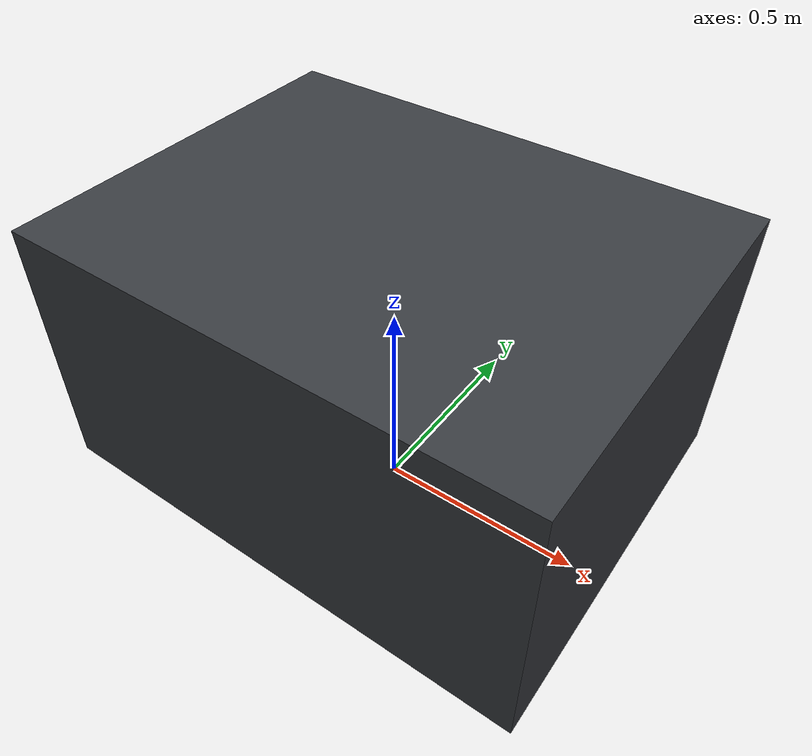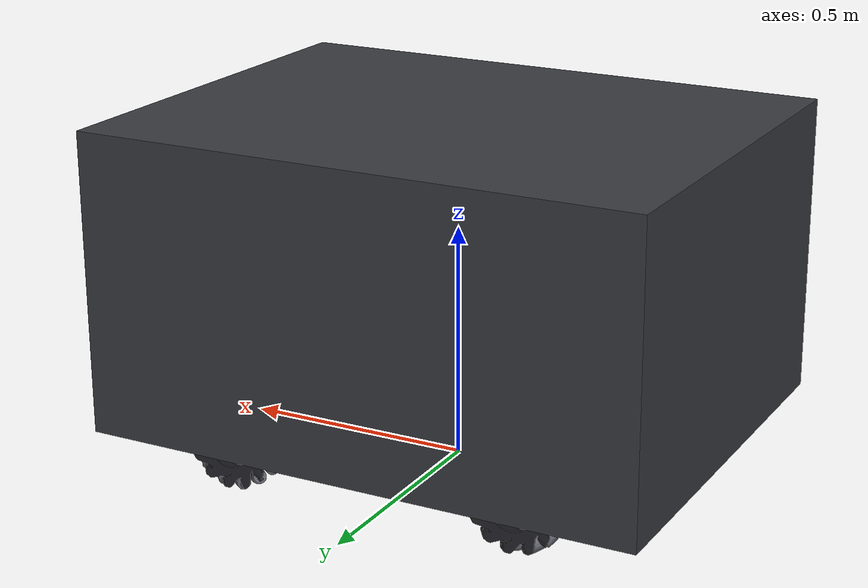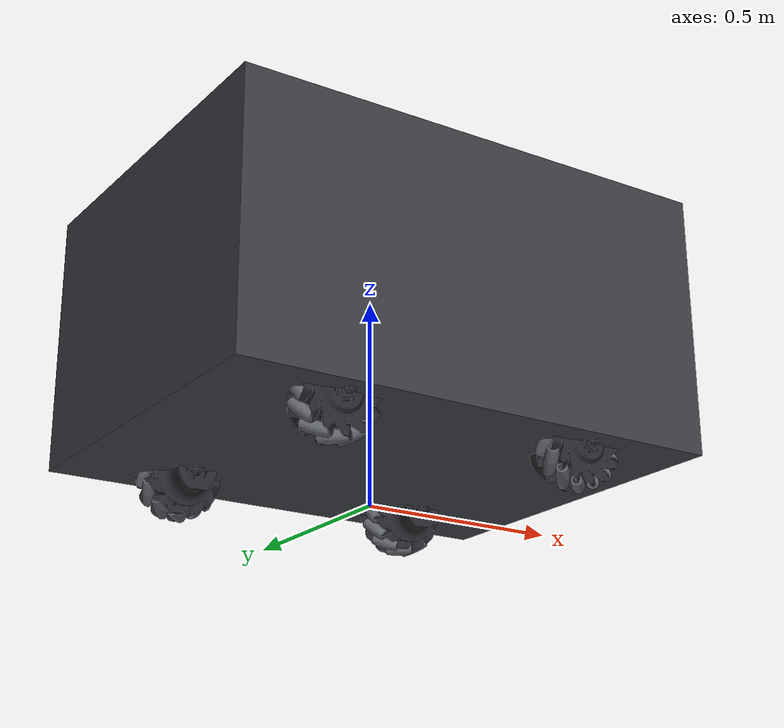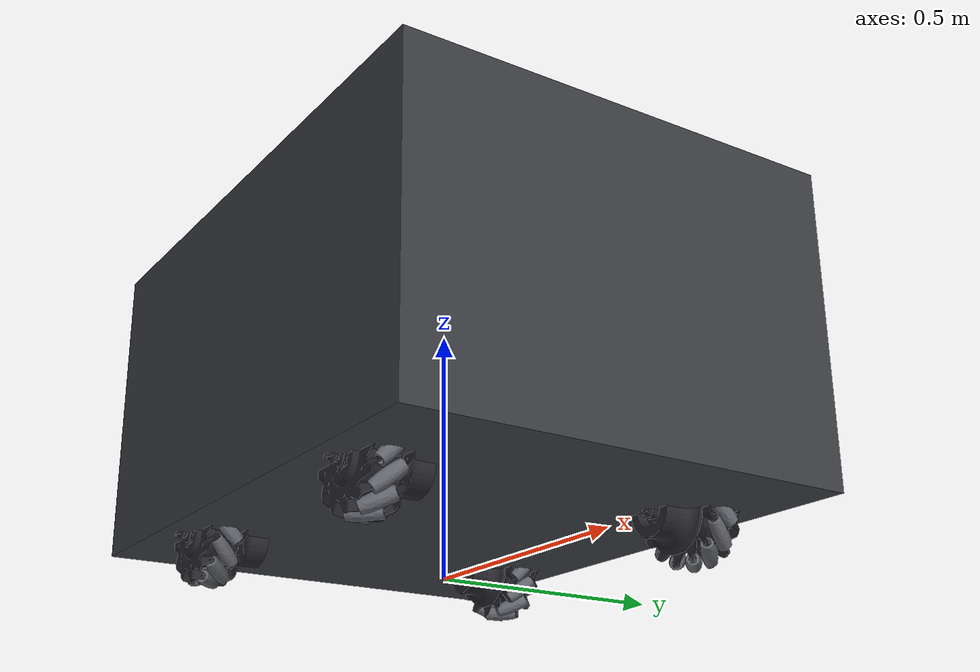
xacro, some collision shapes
<?xml version="1.0"?>
<robot xmlns:xacro="http://www.ros.org/wiki/xacro" name="agro_robot">

  <material name="chassis"><color rgba="0.22 0.23 0.25 1"/></material>
  <material name="hub"><color rgba="0.15 0.15 0.17 1"/></material>
  <material name="roller"><color rgba="0.38 0.39 0.42 1"/></material>

  <link name="base_footprint"/>
  <joint name="base_joint" type="fixed">
    <parent link="base_footprint"/><child link="base_link"/>
    <origin xyz="0 0 0.1014"/>
  </joint>

  <link name="base_link">
    <inertial>
      <origin xyz="0 0 0.22"/>
      <mass value="100.000"/>
      <inertia ixx="11.0" iyy="16.6" izz="18.5" ixy="0" ixz="0" iyz="0"/>
    </inertial>
    <visual>
      <origin xyz="0 0 -0.1035" rpy="0 0 -1.570796"/>
      <geometry><mesh filename="package://maze_nav/meshes/chassis.stl"
              scale="0.001 0.001 0.001"/></geometry>
      <material name="chassis"/>
    </visual>
    <!-- Коллизия примитивом: меш в 680 тыс. граней убил бы физику -->
    <collision>
      <origin xyz="0 0 0.319"/>
      <geometry><box size="1.2016 0.9228 0.6375"/></geometry>
    </collision>
  </link>

  <!-- колесо fl: CAD плоскость X=-355.4, ось Y=317.8, кольцо роликов R=86.0 мм -->
  <link name="fl_wheel">
    <inertial>
      <mass value="4.520"/>
      <inertia ixx="0.013210" iyy="0.023237" izz="0.013210" ixy="0" ixz="0" iyz="0"/>
    </inertial>
    <visual><geometry><mesh
      filename="package://maze_nav/meshes/wheel_hub_l.stl"
      scale="0.001 0.001 0.001"/></geometry>
      <material name="hub"/></visual>
    <!-- Коллизия рельсового ролика: набор цилиндров по измеренному
         профилю (см. RAIL_PROFILE). Канавка вогнутая, одним телом
         её не посчитать — движки берут только выпуклые формы. -->
    <collision><!-- R=50.0 мм -->
      <origin xyz="0 -0.0849 0" rpy="1.570796 0 0"/>
      <geometry><cylinder radius="0.05" length="0.0399"/></geometry>
    </collision>
    <collision><!-- R=52.0 мм -->
      <origin xyz="0 -0.0625 0" rpy="1.570796 0 0"/>
      <geometry><cylinder radius="0.052" length="0.0050"/></geometry>
    </collision>
    <collision><!-- R=55.0 мм -->
      <origin xyz="0 -0.0580 0" rpy="1.570796 0 0"/>
      <geometry><cylinder radius="0.055" length="0.0040"/></geometry>
    </collision>
    <collision><!-- R=58.0 мм -->
      <origin xyz="0 -0.0545 0" rpy="1.570796 0 0"/>
      <geometry><cylinder radius="0.058" length="0.0030"/></geometry>
    </collision>
    <collision><!-- R=62.0 мм -->
      <origin xyz="0 -0.0515 0" rpy="1.570796 0 0"/>
      <geometry><cylinder radius="0.062" length="0.0030"/></geometry>
    </collision>
    <collision><!-- R=68.0 мм -->
      <origin xyz="0 -0.0485 0" rpy="1.570796 0 0"/>
      <geometry><cylinder radius="0.068" length="0.0030"/></geometry>
    </collision>
    <collision><!-- R=75.0 мм -->
      <origin xyz="0 -0.0435 0" rpy="1.570796 0 0"/>
      <geometry><cylinder radius="0.075" length="0.0071"/></geometry>
    </collision>
  </link>
  <joint name="fl_wheel_joint" type="continuous">
    <parent link="base_link"/><child link="fl_wheel"/>
    <origin xyz="0.3178 0.3554 0"/>
    <axis xyz="0 1 0"/>
    <dynamics damping="0.05" friction="0.0"/>
  </joint>
  <link name="fl_roller_0">
    <inertial>
      <mass value="0.04"/>
      <inertia ixx="0.00001647" iyy="0.00001647" izz="0.00000477" ixy="0" ixz="0" iyz="0"/>
    </inertial>
    <visual><geometry><mesh filename="package://maze_nav/meshes/mec_roller.stl" scale="0.001 0.001 0.001"/></geometry><material name="roller"/></visual>
    <collision><geometry><mesh filename="package://maze_nav/meshes/mec_roller.stl" scale="0.001 0.001 0.001"/></geometry></collision>
  </link>
  <joint name="fl_roller_0_joint" type="continuous">
    <parent link="fl_wheel"/><child link="fl_roller_0"/>
    <origin xyz="-0.00004 0.00000 0.08600" rpy="-0.785403 1.570796 0.000000"/>
    <axis xyz="0 0 1"/>
    <dynamics damping="0.0001" friction="0.0"/>
  </joint>
  <link name="fl_roller_1">
    <inertial>
      <mass value="0.04"/>
      <inertia ixx="0.00001647" iyy="0.00001647" izz="0.00000477" ixy="0" ixz="0" iyz="0"/>
    </inertial>
    <visual><geometry><mesh filename="package://maze_nav/meshes/mec_roller.stl" scale="0.001 0.001 0.001"/></geometry><material name="roller"/></visual>
    <collision><geometry><mesh filename="package://maze_nav/meshes/mec_roller.stl" scale="0.001 0.001 0.001"/></geometry></collision>
  </link>
  <joint name="fl_roller_1_joint" type="continuous">
    <parent link="fl_wheel"/><child link="fl_roller_1"/>
    <origin xyz="-0.04303 -0.00000 0.07446" rpy="-0.785403 1.047200 0.000000"/>
    <axis xyz="0 0 1"/>
    <dynamics damping="0.0001" friction="0.0"/>
  </joint>
  <link name="fl_roller_2">
    <inertial>
      <mass value="0.04"/>
      <inertia ixx="0.00001647" iyy="0.00001647" izz="0.00000477" ixy="0" ixz="0" iyz="0"/>
    </inertial>
    <visual><geometry><mesh filename="package://maze_nav/meshes/mec_roller.stl" scale="0.001 0.001 0.001"/></geometry><material name="roller"/></visual>
    <collision><geometry><mesh filename="package://maze_nav/meshes/mec_roller.stl" scale="0.001 0.001 0.001"/></geometry></collision>
  </link>
  <joint name="fl_roller_2_joint" type="continuous">
    <parent link="fl_wheel"/><child link="fl_roller_2"/>
    <origin xyz="-0.07450 -0.00000 0.04297" rpy="-0.785403 0.523596 0.000000"/>
    <axis xyz="0 0 1"/>
    <dynamics damping="0.0001" friction="0.0"/>
  </joint>
  <link name="fl_roller_3">
    <inertial>
      <mass value="0.04"/>
      <inertia ixx="0.00001647" iyy="0.00001647" izz="0.00000477" ixy="0" ixz="0" iyz="0"/>
    </inertial>
    <visual><geometry><mesh filename="package://maze_nav/meshes/mec_roller.stl" scale="0.001 0.001 0.001"/></geometry><material name="roller"/></visual>
    <collision><geometry><mesh filename="package://maze_nav/meshes/mec_roller.stl" scale="0.001 0.001 0.001"/></geometry></collision>
  </link>
  <joint name="fl_roller_3_joint" type="continuous">
    <parent link="fl_wheel"/><child link="fl_roller_3"/>
    <origin xyz="-0.08600 -0.00000 -0.00004" rpy="-0.785403 0.000000 0.000000"/>
    <axis xyz="0 0 1"/>
    <dynamics damping="0.0001" friction="0.0"/>
  </joint>
  <link name="fl_roller_4">
    <inertial>
      <mass value="0.04"/>
      <inertia ixx="0.00001647" iyy="0.00001647" izz="0.00000477" ixy="0" ixz="0" iyz="0"/>
    </inertial>
    <visual><geometry><mesh filename="package://maze_nav/meshes/mec_roller.stl" scale="0.001 0.001 0.001"/></geometry><material name="roller"/></visual>
    <collision><geometry><mesh filename="package://maze_nav/meshes/mec_roller.stl" scale="0.001 0.001 0.001"/></geometry></collision>
  </link>
  <joint name="fl_roller_4_joint" type="continuous">
    <parent link="fl_wheel"/><child link="fl_roller_4"/>
    <origin xyz="-0.07446 -0.00000 -0.04303" rpy="-0.785403 -0.523596 0.000000"/>
    <axis xyz="0 0 1"/>
    <dynamics damping="0.0001" friction="0.0"/>
  </joint>
  <link name="fl_roller_5">
    <inertial>
      <mass value="0.04"/>
      <inertia ixx="0.00001647" iyy="0.00001647" izz="0.00000477" ixy="0" ixz="0" iyz="0"/>
    </inertial>
    <visual><geometry><mesh filename="package://maze_nav/meshes/mec_roller.stl" scale="0.001 0.001 0.001"/></geometry><material name="roller"/></visual>
    <collision><geometry><mesh filename="package://maze_nav/meshes/mec_roller.stl" scale="0.001 0.001 0.001"/></geometry></collision>
  </link>
  <joint name="fl_roller_5_joint" type="continuous">
    <parent link="fl_wheel"/><child link="fl_roller_5"/>
    <origin xyz="-0.04297 -0.00000 -0.07450" rpy="-0.785403 -1.047200 0.000000"/>
    <axis xyz="0 0 1"/>
    <dynamics damping="0.0001" friction="0.0"/>
  </joint>
  <link name="fl_roller_6">
    <inertial>
      <mass value="0.04"/>
      <inertia ixx="0.00001647" iyy="0.00001647" izz="0.00000477" ixy="0" ixz="0" iyz="0"/>
    </inertial>
    <visual><geometry><mesh filename="package://maze_nav/meshes/mec_roller.stl" scale="0.001 0.001 0.001"/></geometry><material name="roller"/></visual>
    <collision><geometry><mesh filename="package://maze_nav/meshes/mec_roller.stl" scale="0.001 0.001 0.001"/></geometry></collision>
  </link>
  <joint name="fl_roller_6_joint" type="continuous">
    <parent link="fl_wheel"/><child link="fl_roller_6"/>
    <origin xyz="0.00004 -0.00000 -0.08600" rpy="-0.785403 -1.570796 0.000000"/>
    <axis xyz="0 0 1"/>
    <dynamics damping="0.0001" friction="0.0"/>
  </joint>
  <link name="fl_roller_7">
    <inertial>
      <mass value="0.04"/>
      <inertia ixx="0.00001647" iyy="0.00001647" izz="0.00000477" ixy="0" ixz="0" iyz="0"/>
    </inertial>
    <visual><geometry><mesh filename="package://maze_nav/meshes/mec_roller.stl" scale="0.001 0.001 0.001"/></geometry><material name="roller"/></visual>
    <collision><geometry><mesh filename="package://maze_nav/meshes/mec_roller.stl" scale="0.001 0.001 0.001"/></geometry></collision>
  </link>
  <joint name="fl_roller_7_joint" type="continuous">
    <parent link="fl_wheel"/><child link="fl_roller_7"/>
    <origin xyz="0.04303 0.00000 -0.07446" rpy="-0.785403 -2.094393 0.000000"/>
    <axis xyz="0 0 1"/>
    <dynamics damping="0.0001" friction="0.0"/>
  </joint>
  <link name="fl_roller_8">
    <inertial>
      <mass value="0.04"/>
      <inertia ixx="0.00001647" iyy="0.00001647" izz="0.00000477" ixy="0" ixz="0" iyz="0"/>
    </inertial>
    <visual><geometry><mesh filename="package://maze_nav/meshes/mec_roller.stl" scale="0.001 0.001 0.001"/></geometry><material name="roller"/></visual>
    <collision><geometry><mesh filename="package://maze_nav/meshes/mec_roller.stl" scale="0.001 0.001 0.001"/></geometry></collision>
  </link>
  <joint name="fl_roller_8_joint" type="continuous">
    <parent link="fl_wheel"/><child link="fl_roller_8"/>
    <origin xyz="0.07450 0.00000 -0.04297" rpy="-0.785403 -2.617996 0.000000"/>
    <axis xyz="0 0 1"/>
    <dynamics damping="0.0001" friction="0.0"/>
  </joint>
  <link name="fl_roller_9">
    <inertial>
      <mass value="0.04"/>
      <inertia ixx="0.00001647" iyy="0.00001647" izz="0.00000477" ixy="0" ixz="0" iyz="0"/>
    </inertial>
    <visual><geometry><mesh filename="package://maze_nav/meshes/mec_roller.stl" scale="0.001 0.001 0.001"/></geometry><material name="roller"/></visual>
    <collision><geometry><mesh filename="package://maze_nav/meshes/mec_roller.stl" scale="0.001 0.001 0.001"/></geometry></collision>
  </link>
  <joint name="fl_roller_9_joint" type="continuous">
    <parent link="fl_wheel"/><child link="fl_roller_9"/>
    <origin xyz="0.08600 0.00000 0.00004" rpy="0.785403 -0.000000 0.000000"/>
    <axis xyz="0 0 1"/>
    <dynamics damping="0.0001" friction="0.0"/>
  </joint>
  <link name="fl_roller_10">
    <inertial>
      <mass value="0.04"/>
      <inertia ixx="0.00001647" iyy="0.00001647" izz="0.00000477" ixy="0" ixz="0" iyz="0"/>
    </inertial>
    <visual><geometry><mesh filename="package://maze_nav/meshes/mec_roller.stl" scale="0.001 0.001 0.001"/></geometry><material name="roller"/></visual>
    <collision><geometry><mesh filename="package://maze_nav/meshes/mec_roller.stl" scale="0.001 0.001 0.001"/></geometry></collision>
  </link>
  <joint name="fl_roller_10_joint" type="continuous">
    <parent link="fl_wheel"/><child link="fl_roller_10"/>
    <origin xyz="0.07446 0.00000 0.04303" rpy="-0.785403 2.617996 0.000000"/>
    <axis xyz="0 0 1"/>
    <dynamics damping="0.0001" friction="0.0"/>
  </joint>
  <link name="fl_roller_11">
    <inertial>
      <mass value="0.04"/>
      <inertia ixx="0.00001647" iyy="0.00001647" izz="0.00000477" ixy="0" ixz="0" iyz="0"/>
    </inertial>
    <visual><geometry><mesh filename="package://maze_nav/meshes/mec_roller.stl" scale="0.001 0.001 0.001"/></geometry><material name="roller"/></visual>
    <collision><geometry><mesh filename="package://maze_nav/meshes/mec_roller.stl" scale="0.001 0.001 0.001"/></geometry></collision>
  </link>
  <joint name="fl_roller_11_joint" type="continuous">
    <parent link="fl_wheel"/><child link="fl_roller_11"/>
    <origin xyz="0.04297 0.00000 0.07450" rpy="-0.785403 2.094393 0.000000"/>
    <axis xyz="0 0 1"/>
    <dynamics damping="0.0001" friction="0.0"/>
  </joint>

  <!-- колесо fr: CAD плоскость X=355.4, ось Y=317.8, кольцо роликов R=86.2 мм -->
  <link name="fr_wheel">
    <inertial>
      <mass value="4.520"/>
      <inertia ixx="0.013210" iyy="0.023237" izz="0.013210" ixy="0" ixz="0" iyz="0"/>
    </inertial>
    <visual><geometry><mesh
      filename="package://maze_nav/meshes/wheel_hub_r.stl"
      scale="0.001 0.001 0.001"/></geometry>
      <material name="hub"/></visual>
    <!-- Коллизия рельсового ролика: набор цилиндров по измеренному
         профилю (см. RAIL_PROFILE). Канавка вогнутая, одним телом
         её не посчитать — движки берут только выпуклые формы. -->
    <collision><!-- R=50.0 мм -->
      <origin xyz="0 0.0849 0" rpy="1.570796 0 0"/>
      <geometry><cylinder radius="0.05" length="0.0399"/></geometry>
    </collision>
    <collision><!-- R=52.0 мм -->
      <origin xyz="0 0.0625 0" rpy="1.570796 0 0"/>
      <geometry><cylinder radius="0.052" length="0.0050"/></geometry>
    </collision>
    <collision><!-- R=55.0 мм -->
      <origin xyz="0 0.0580 0" rpy="1.570796 0 0"/>
      <geometry><cylinder radius="0.055" length="0.0040"/></geometry>
    </collision>
    <collision><!-- R=58.0 мм -->
      <origin xyz="0 0.0545 0" rpy="1.570796 0 0"/>
      <geometry><cylinder radius="0.058" length="0.0030"/></geometry>
    </collision>
    <collision><!-- R=62.0 мм -->
      <origin xyz="0 0.0515 0" rpy="1.570796 0 0"/>
      <geometry><cylinder radius="0.062" length="0.0030"/></geometry>
    </collision>
    <collision><!-- R=68.0 мм -->
      <origin xyz="0 0.0485 0" rpy="1.570796 0 0"/>
      <geometry><cylinder radius="0.068" length="0.0030"/></geometry>
    </collision>
    <collision><!-- R=75.0 мм -->
      <origin xyz="0 0.0435 0" rpy="1.570796 0 0"/>
      <geometry><cylinder radius="0.075" length="0.0071"/></geometry>
    </collision>
  </link>
  <joint name="fr_wheel_joint" type="continuous">
    <parent link="base_link"/><child link="fr_wheel"/>
    <origin xyz="0.3178 -0.3554 0"/>
    <axis xyz="0 1 0"/>
    <dynamics damping="0.05" friction="0.0"/>
  </joint>
  <link name="fr_roller_0">
    <inertial>
      <mass value="0.04"/>
      <inertia ixx="0.00001647" iyy="0.00001647" izz="0.00000477" ixy="0" ixz="0" iyz="0"/>
    </inertial>
    <visual><geometry><mesh filename="package://maze_nav/meshes/mec_roller.stl" scale="0.001 0.001 0.001"/></geometry><material name="roller"/></visual>
    <collision><geometry><mesh filename="package://maze_nav/meshes/mec_roller.stl" scale="0.001 0.001 0.001"/></geometry></collision>
  </link>
  <joint name="fr_roller_0_joint" type="continuous">
    <parent link="fr_wheel"/><child link="fr_roller_0"/>
    <origin xyz="-0.00004 -0.00000 0.08600" rpy="-0.785403 -1.570796 0.000000"/>
    <axis xyz="0 0 1"/>
    <dynamics damping="0.0001" friction="0.0"/>
  </joint>
  <link name="fr_roller_1">
    <inertial>
      <mass value="0.04"/>
      <inertia ixx="0.00001647" iyy="0.00001647" izz="0.00000477" ixy="0" ixz="0" iyz="0"/>
    </inertial>
    <visual><geometry><mesh filename="package://maze_nav/meshes/mec_roller.stl" scale="0.001 0.001 0.001"/></geometry><material name="roller"/></visual>
    <collision><geometry><mesh filename="package://maze_nav/meshes/mec_roller.stl" scale="0.001 0.001 0.001"/></geometry></collision>
  </link>
  <joint name="fr_roller_1_joint" type="continuous">
    <parent link="fr_wheel"/><child link="fr_roller_1"/>
    <origin xyz="0.04297 0.00000 0.07450" rpy="-0.785403 -1.047200 0.000000"/>
    <axis xyz="0 0 1"/>
    <dynamics damping="0.0001" friction="0.0"/>
  </joint>
  <link name="fr_roller_2">
    <inertial>
      <mass value="0.04"/>
      <inertia ixx="0.00001647" iyy="0.00001647" izz="0.00000477" ixy="0" ixz="0" iyz="0"/>
    </inertial>
    <visual><geometry><mesh filename="package://maze_nav/meshes/mec_roller.stl" scale="0.001 0.001 0.001"/></geometry><material name="roller"/></visual>
    <collision><geometry><mesh filename="package://maze_nav/meshes/mec_roller.stl" scale="0.001 0.001 0.001"/></geometry></collision>
  </link>
  <joint name="fr_roller_2_joint" type="continuous">
    <parent link="fr_wheel"/><child link="fr_roller_2"/>
    <origin xyz="0.07446 0.00000 0.04303" rpy="-0.785403 -0.523596 0.000000"/>
    <axis xyz="0 0 1"/>
    <dynamics damping="0.0001" friction="0.0"/>
  </joint>
  <link name="fr_roller_3">
    <inertial>
      <mass value="0.04"/>
      <inertia ixx="0.00001647" iyy="0.00001647" izz="0.00000477" ixy="0" ixz="0" iyz="0"/>
    </inertial>
    <visual><geometry><mesh filename="package://maze_nav/meshes/mec_roller.stl" scale="0.001 0.001 0.001"/></geometry><material name="roller"/></visual>
    <collision><geometry><mesh filename="package://maze_nav/meshes/mec_roller.stl" scale="0.001 0.001 0.001"/></geometry></collision>
  </link>
  <joint name="fr_roller_3_joint" type="continuous">
    <parent link="fr_wheel"/><child link="fr_roller_3"/>
    <origin xyz="0.08600 0.00000 0.00004" rpy="-0.785403 0.000000 0.000000"/>
    <axis xyz="0 0 1"/>
    <dynamics damping="0.0001" friction="0.0"/>
  </joint>
  <link name="fr_roller_4">
    <inertial>
      <mass value="0.04"/>
      <inertia ixx="0.00001647" iyy="0.00001647" izz="0.00000477" ixy="0" ixz="0" iyz="0"/>
    </inertial>
    <visual><geometry><mesh filename="package://maze_nav/meshes/mec_roller.stl" scale="0.001 0.001 0.001"/></geometry><material name="roller"/></visual>
    <collision><geometry><mesh filename="package://maze_nav/meshes/mec_roller.stl" scale="0.001 0.001 0.001"/></geometry></collision>
  </link>
  <joint name="fr_roller_4_joint" type="continuous">
    <parent link="fr_wheel"/><child link="fr_roller_4"/>
    <origin xyz="0.07450 0.00000 -0.04297" rpy="-0.785403 0.523596 0.000000"/>
    <axis xyz="0 0 1"/>
    <dynamics damping="0.0001" friction="0.0"/>
  </joint>
  <link name="fr_roller_5">
    <inertial>
      <mass value="0.04"/>
      <inertia ixx="0.00001647" iyy="0.00001647" izz="0.00000477" ixy="0" ixz="0" iyz="0"/>
    </inertial>
    <visual><geometry><mesh filename="package://maze_nav/meshes/mec_roller.stl" scale="0.001 0.001 0.001"/></geometry><material name="roller"/></visual>
    <collision><geometry><mesh filename="package://maze_nav/meshes/mec_roller.stl" scale="0.001 0.001 0.001"/></geometry></collision>
  </link>
  <joint name="fr_roller_5_joint" type="continuous">
    <parent link="fr_wheel"/><child link="fr_roller_5"/>
    <origin xyz="0.04303 0.00000 -0.07446" rpy="-0.785403 1.047200 0.000000"/>
    <axis xyz="0 0 1"/>
    <dynamics damping="0.0001" friction="0.0"/>
  </joint>
  <link name="fr_roller_6">
    <inertial>
      <mass value="0.04"/>
      <inertia ixx="0.00001647" iyy="0.00001647" izz="0.00000477" ixy="0" ixz="0" iyz="0"/>
    </inertial>
    <visual><geometry><mesh filename="package://maze_nav/meshes/mec_roller.stl" scale="0.001 0.001 0.001"/></geometry><material name="roller"/></visual>
    <collision><geometry><mesh filename="package://maze_nav/meshes/mec_roller.stl" scale="0.001 0.001 0.001"/></geometry></collision>
  </link>
  <joint name="fr_roller_6_joint" type="continuous">
    <parent link="fr_wheel"/><child link="fr_roller_6"/>
    <origin xyz="0.00004 0.00000 -0.08600" rpy="-0.785403 1.570796 0.000000"/>
    <axis xyz="0 0 1"/>
    <dynamics damping="0.0001" friction="0.0"/>
  </joint>
  <link name="fr_roller_7">
    <inertial>
      <mass value="0.04"/>
      <inertia ixx="0.00001647" iyy="0.00001647" izz="0.00000477" ixy="0" ixz="0" iyz="0"/>
    </inertial>
    <visual><geometry><mesh filename="package://maze_nav/meshes/mec_roller.stl" scale="0.001 0.001 0.001"/></geometry><material name="roller"/></visual>
    <collision><geometry><mesh filename="package://maze_nav/meshes/mec_roller.stl" scale="0.001 0.001 0.001"/></geometry></collision>
  </link>
  <joint name="fr_roller_7_joint" type="continuous">
    <parent link="fr_wheel"/><child link="fr_roller_7"/>
    <origin xyz="-0.04297 -0.00000 -0.07450" rpy="-0.785403 2.094393 0.000000"/>
    <axis xyz="0 0 1"/>
    <dynamics damping="0.0001" friction="0.0"/>
  </joint>
  <link name="fr_roller_8">
    <inertial>
      <mass value="0.04"/>
      <inertia ixx="0.00001647" iyy="0.00001647" izz="0.00000477" ixy="0" ixz="0" iyz="0"/>
    </inertial>
    <visual><geometry><mesh filename="package://maze_nav/meshes/mec_roller.stl" scale="0.001 0.001 0.001"/></geometry><material name="roller"/></visual>
    <collision><geometry><mesh filename="package://maze_nav/meshes/mec_roller.stl" scale="0.001 0.001 0.001"/></geometry></collision>
  </link>
  <joint name="fr_roller_8_joint" type="continuous">
    <parent link="fr_wheel"/><child link="fr_roller_8"/>
    <origin xyz="-0.07446 -0.00000 -0.04303" rpy="-0.785403 2.617996 0.000000"/>
    <axis xyz="0 0 1"/>
    <dynamics damping="0.0001" friction="0.0"/>
  </joint>
  <link name="fr_roller_9">
    <inertial>
      <mass value="0.04"/>
      <inertia ixx="0.00001647" iyy="0.00001647" izz="0.00000477" ixy="0" ixz="0" iyz="0"/>
    </inertial>
    <visual><geometry><mesh filename="package://maze_nav/meshes/mec_roller.stl" scale="0.001 0.001 0.001"/></geometry><material name="roller"/></visual>
    <collision><geometry><mesh filename="package://maze_nav/meshes/mec_roller.stl" scale="0.001 0.001 0.001"/></geometry></collision>
  </link>
  <joint name="fr_roller_9_joint" type="continuous">
    <parent link="fr_wheel"/><child link="fr_roller_9"/>
    <origin xyz="-0.08600 -0.00000 -0.00004" rpy="-0.785403 3.141593 0.000000"/>
    <axis xyz="0 0 1"/>
    <dynamics damping="0.0001" friction="0.0"/>
  </joint>
  <link name="fr_roller_10">
    <inertial>
      <mass value="0.04"/>
      <inertia ixx="0.00001647" iyy="0.00001647" izz="0.00000477" ixy="0" ixz="0" iyz="0"/>
    </inertial>
    <visual><geometry><mesh filename="package://maze_nav/meshes/mec_roller.stl" scale="0.001 0.001 0.001"/></geometry><material name="roller"/></visual>
    <collision><geometry><mesh filename="package://maze_nav/meshes/mec_roller.stl" scale="0.001 0.001 0.001"/></geometry></collision>
  </link>
  <joint name="fr_roller_10_joint" type="continuous">
    <parent link="fr_wheel"/><child link="fr_roller_10"/>
    <origin xyz="-0.07450 -0.00000 0.04297" rpy="-0.785403 -2.617996 0.000000"/>
    <axis xyz="0 0 1"/>
    <dynamics damping="0.0001" friction="0.0"/>
  </joint>
  <link name="fr_roller_11">
    <inertial>
      <mass value="0.04"/>
      <inertia ixx="0.00001647" iyy="0.00001647" izz="0.00000477" ixy="0" ixz="0" iyz="0"/>
    </inertial>
    <visual><geometry><mesh filename="package://maze_nav/meshes/mec_roller.stl" scale="0.001 0.001 0.001"/></geometry><material name="roller"/></visual>
    <collision><geometry><mesh filename="package://maze_nav/meshes/mec_roller.stl" scale="0.001 0.001 0.001"/></geometry></collision>
  </link>
  <joint name="fr_roller_11_joint" type="continuous">
    <parent link="fr_wheel"/><child link="fr_roller_11"/>
    <origin xyz="-0.04303 -0.00000 0.07446" rpy="-0.785403 -2.094393 0.000000"/>
    <axis xyz="0 0 1"/>
    <dynamics damping="0.0001" friction="0.0"/>
  </joint>

  <!-- колесо rl: CAD плоскость X=-355.4, ось Y=-317.8, кольцо роликов R=88.8 мм -->
  <link name="rl_wheel">
    <inertial>
      <mass value="4.520"/>
      <inertia ixx="0.013210" iyy="0.023237" izz="0.013210" ixy="0" ixz="0" iyz="0"/>
    </inertial>
    <visual><geometry><mesh
      filename="package://maze_nav/meshes/wheel_hub_l.stl"
      scale="0.001 0.001 0.001"/></geometry>
      <material name="hub"/></visual>
    <!-- Коллизия рельсового ролика: набор цилиндров по измеренному
         профилю (см. RAIL_PROFILE). Канавка вогнутая, одним телом
         её не посчитать — движки берут только выпуклые формы. -->
    <collision><!-- R=50.0 мм -->
      <origin xyz="0 -0.0849 0" rpy="1.570796 0 0"/>
      <geometry><cylinder radius="0.05" length="0.0399"/></geometry>
    </collision>
    <collision><!-- R=52.0 мм -->
      <origin xyz="0 -0.0625 0" rpy="1.570796 0 0"/>
      <geometry><cylinder radius="0.052" length="0.0050"/></geometry>
    </collision>
    <collision><!-- R=55.0 мм -->
      <origin xyz="0 -0.0580 0" rpy="1.570796 0 0"/>
      <geometry><cylinder radius="0.055" length="0.0040"/></geometry>
    </collision>
    <collision><!-- R=58.0 мм -->
      <origin xyz="0 -0.0545 0" rpy="1.570796 0 0"/>
      <geometry><cylinder radius="0.058" length="0.0030"/></geometry>
    </collision>
    <collision><!-- R=62.0 мм -->
      <origin xyz="0 -0.0515 0" rpy="1.570796 0 0"/>
      <geometry><cylinder radius="0.062" length="0.0030"/></geometry>
    </collision>
    <collision><!-- R=68.0 мм -->
      <origin xyz="0 -0.0485 0" rpy="1.570796 0 0"/>
      <geometry><cylinder radius="0.068" length="0.0030"/></geometry>
    </collision>
    <collision><!-- R=75.0 мм -->
      <origin xyz="0 -0.0435 0" rpy="1.570796 0 0"/>
      <geometry><cylinder radius="0.075" length="0.0071"/></geometry>
    </collision>
  </link>
  <joint name="rl_wheel_joint" type="continuous">
    <parent link="base_link"/><child link="rl_wheel"/>
    <origin xyz="-0.3178 0.3554 0"/>
    <axis xyz="0 1 0"/>
    <dynamics damping="0.05" friction="0.0"/>
  </joint>
  <link name="rl_roller_0">
    <inertial>
      <mass value="0.04"/>
      <inertia ixx="0.00001647" iyy="0.00001647" izz="0.00000477" ixy="0" ixz="0" iyz="0"/>
    </inertial>
    <visual><geometry><mesh filename="package://maze_nav/meshes/mec_roller.stl" scale="0.001 0.001 0.001"/></geometry><material name="roller"/></visual>
    <collision><geometry><mesh filename="package://maze_nav/meshes/mec_roller.stl" scale="0.001 0.001 0.001"/></geometry></collision>
  </link>
  <joint name="rl_roller_0_joint" type="continuous">
    <parent link="rl_wheel"/><child link="rl_roller_0"/>
    <origin xyz="0.00004 0.00000 0.08600" rpy="-0.785403 -1.570796 0.000000"/>
    <axis xyz="0 0 1"/>
    <dynamics damping="0.0001" friction="0.0"/>
  </joint>
  <link name="rl_roller_1">
    <inertial>
      <mass value="0.04"/>
      <inertia ixx="0.00001647" iyy="0.00001647" izz="0.00000477" ixy="0" ixz="0" iyz="0"/>
    </inertial>
    <visual><geometry><mesh filename="package://maze_nav/meshes/mec_roller.stl" scale="0.001 0.001 0.001"/></geometry><material name="roller"/></visual>
    <collision><geometry><mesh filename="package://maze_nav/meshes/mec_roller.stl" scale="0.001 0.001 0.001"/></geometry></collision>
  </link>
  <joint name="rl_roller_1_joint" type="continuous">
    <parent link="rl_wheel"/><child link="rl_roller_1"/>
    <origin xyz="-0.04297 0.00000 0.07450" rpy="-0.785403 -2.094393 0.000000"/>
    <axis xyz="0 0 1"/>
    <dynamics damping="0.0001" friction="0.0"/>
  </joint>
  <link name="rl_roller_2">
    <inertial>
      <mass value="0.04"/>
      <inertia ixx="0.00001647" iyy="0.00001647" izz="0.00000477" ixy="0" ixz="0" iyz="0"/>
    </inertial>
    <visual><geometry><mesh filename="package://maze_nav/meshes/mec_roller.stl" scale="0.001 0.001 0.001"/></geometry><material name="roller"/></visual>
    <collision><geometry><mesh filename="package://maze_nav/meshes/mec_roller.stl" scale="0.001 0.001 0.001"/></geometry></collision>
  </link>
  <joint name="rl_roller_2_joint" type="continuous">
    <parent link="rl_wheel"/><child link="rl_roller_2"/>
    <origin xyz="-0.07446 -0.00000 0.04303" rpy="-0.785403 -2.617996 0.000000"/>
    <axis xyz="0 0 1"/>
    <dynamics damping="0.0001" friction="0.0"/>
  </joint>
  <link name="rl_roller_3">
    <inertial>
      <mass value="0.04"/>
      <inertia ixx="0.00001647" iyy="0.00001647" izz="0.00000477" ixy="0" ixz="0" iyz="0"/>
    </inertial>
    <visual><geometry><mesh filename="package://maze_nav/meshes/mec_roller.stl" scale="0.001 0.001 0.001"/></geometry><material name="roller"/></visual>
    <collision><geometry><mesh filename="package://maze_nav/meshes/mec_roller.stl" scale="0.001 0.001 0.001"/></geometry></collision>
  </link>
  <joint name="rl_roller_3_joint" type="continuous">
    <parent link="rl_wheel"/><child link="rl_roller_3"/>
    <origin xyz="-0.08600 -0.00000 0.00004" rpy="-0.785403 3.141593 0.000000"/>
    <axis xyz="0 0 1"/>
    <dynamics damping="0.0001" friction="0.0"/>
  </joint>
  <link name="rl_roller_4">
    <inertial>
      <mass value="0.04"/>
      <inertia ixx="0.00001647" iyy="0.00001647" izz="0.00000477" ixy="0" ixz="0" iyz="0"/>
    </inertial>
    <visual><geometry><mesh filename="package://maze_nav/meshes/mec_roller.stl" scale="0.001 0.001 0.001"/></geometry><material name="roller"/></visual>
    <collision><geometry><mesh filename="package://maze_nav/meshes/mec_roller.stl" scale="0.001 0.001 0.001"/></geometry></collision>
  </link>
  <joint name="rl_roller_4_joint" type="continuous">
    <parent link="rl_wheel"/><child link="rl_roller_4"/>
    <origin xyz="-0.07450 -0.00000 -0.04297" rpy="-0.785403 2.617996 0.000000"/>
    <axis xyz="0 0 1"/>
    <dynamics damping="0.0001" friction="0.0"/>
  </joint>
  <link name="rl_roller_5">
    <inertial>
      <mass value="0.04"/>
      <inertia ixx="0.00001647" iyy="0.00001647" izz="0.00000477" ixy="0" ixz="0" iyz="0"/>
    </inertial>
    <visual><geometry><mesh filename="package://maze_nav/meshes/mec_roller.stl" scale="0.001 0.001 0.001"/></geometry><material name="roller"/></visual>
    <collision><geometry><mesh filename="package://maze_nav/meshes/mec_roller.stl" scale="0.001 0.001 0.001"/></geometry></collision>
  </link>
  <joint name="rl_roller_5_joint" type="continuous">
    <parent link="rl_wheel"/><child link="rl_roller_5"/>
    <origin xyz="-0.04303 0.00000 -0.07446" rpy="-0.785403 2.094393 0.000000"/>
    <axis xyz="0 0 1"/>
    <dynamics damping="0.0001" friction="0.0"/>
  </joint>
  <link name="rl_roller_6">
    <inertial>
      <mass value="0.04"/>
      <inertia ixx="0.00001647" iyy="0.00001647" izz="0.00000477" ixy="0" ixz="0" iyz="0"/>
    </inertial>
    <visual><geometry><mesh filename="package://maze_nav/meshes/mec_roller.stl" scale="0.001 0.001 0.001"/></geometry><material name="roller"/></visual>
    <collision><geometry><mesh filename="package://maze_nav/meshes/mec_roller.stl" scale="0.001 0.001 0.001"/></geometry></collision>
  </link>
  <joint name="rl_roller_6_joint" type="continuous">
    <parent link="rl_wheel"/><child link="rl_roller_6"/>
    <origin xyz="-0.00004 0.00000 -0.08600" rpy="-0.785403 1.570796 0.000000"/>
    <axis xyz="0 0 1"/>
    <dynamics damping="0.0001" friction="0.0"/>
  </joint>
  <link name="rl_roller_7">
    <inertial>
      <mass value="0.04"/>
      <inertia ixx="0.00001647" iyy="0.00001647" izz="0.00000477" ixy="0" ixz="0" iyz="0"/>
    </inertial>
    <visual><geometry><mesh filename="package://maze_nav/meshes/mec_roller.stl" scale="0.001 0.001 0.001"/></geometry><material name="roller"/></visual>
    <collision><geometry><mesh filename="package://maze_nav/meshes/mec_roller.stl" scale="0.001 0.001 0.001"/></geometry></collision>
  </link>
  <joint name="rl_roller_7_joint" type="continuous">
    <parent link="rl_wheel"/><child link="rl_roller_7"/>
    <origin xyz="0.04297 0.00000 -0.07450" rpy="-0.785403 1.047200 0.000000"/>
    <axis xyz="0 0 1"/>
    <dynamics damping="0.0001" friction="0.0"/>
  </joint>
  <link name="rl_roller_8">
    <inertial>
      <mass value="0.04"/>
      <inertia ixx="0.00001647" iyy="0.00001647" izz="0.00000477" ixy="0" ixz="0" iyz="0"/>
    </inertial>
    <visual><geometry><mesh filename="package://maze_nav/meshes/mec_roller.stl" scale="0.001 0.001 0.001"/></geometry><material name="roller"/></visual>
    <collision><geometry><mesh filename="package://maze_nav/meshes/mec_roller.stl" scale="0.001 0.001 0.001"/></geometry></collision>
  </link>
  <joint name="rl_roller_8_joint" type="continuous">
    <parent link="rl_wheel"/><child link="rl_roller_8"/>
    <origin xyz="0.07446 -0.00000 -0.04303" rpy="-0.785403 0.523596 0.000000"/>
    <axis xyz="0 0 1"/>
    <dynamics damping="0.0001" friction="0.0"/>
  </joint>
  <link name="rl_roller_9">
    <inertial>
      <mass value="0.04"/>
      <inertia ixx="0.00001647" iyy="0.00001647" izz="0.00000477" ixy="0" ixz="0" iyz="0"/>
    </inertial>
    <visual><geometry><mesh filename="package://maze_nav/meshes/mec_roller.stl" scale="0.001 0.001 0.001"/></geometry><material name="roller"/></visual>
    <collision><geometry><mesh filename="package://maze_nav/meshes/mec_roller.stl" scale="0.001 0.001 0.001"/></geometry></collision>
  </link>
  <joint name="rl_roller_9_joint" type="continuous">
    <parent link="rl_wheel"/><child link="rl_roller_9"/>
    <origin xyz="0.08600 0.00000 -0.00004" rpy="-0.785403 0.000000 0.000000"/>
    <axis xyz="0 0 1"/>
    <dynamics damping="0.0001" friction="0.0"/>
  </joint>
  <link name="rl_roller_10">
    <inertial>
      <mass value="0.04"/>
      <inertia ixx="0.00001647" iyy="0.00001647" izz="0.00000477" ixy="0" ixz="0" iyz="0"/>
    </inertial>
    <visual><geometry><mesh filename="package://maze_nav/meshes/mec_roller.stl" scale="0.001 0.001 0.001"/></geometry><material name="roller"/></visual>
    <collision><geometry><mesh filename="package://maze_nav/meshes/mec_roller.stl" scale="0.001 0.001 0.001"/></geometry></collision>
  </link>
  <joint name="rl_roller_10_joint" type="continuous">
    <parent link="rl_wheel"/><child link="rl_roller_10"/>
    <origin xyz="0.07450 0.00000 0.04297" rpy="-0.785403 -0.523596 0.000000"/>
    <axis xyz="0 0 1"/>
    <dynamics damping="0.0001" friction="0.0"/>
  </joint>
  <link name="rl_roller_11">
    <inertial>
      <mass value="0.04"/>
      <inertia ixx="0.00001647" iyy="0.00001647" izz="0.00000477" ixy="0" ixz="0" iyz="0"/>
    </inertial>
    <visual><geometry><mesh filename="package://maze_nav/meshes/mec_roller.stl" scale="0.001 0.001 0.001"/></geometry><material name="roller"/></visual>
    <collision><geometry><mesh filename="package://maze_nav/meshes/mec_roller.stl" scale="0.001 0.001 0.001"/></geometry></collision>
  </link>
  <joint name="rl_roller_11_joint" type="continuous">
    <parent link="rl_wheel"/><child link="rl_roller_11"/>
    <origin xyz="0.04303 0.00000 0.07446" rpy="-0.785403 -1.047200 0.000000"/>
    <axis xyz="0 0 1"/>
    <dynamics damping="0.0001" friction="0.0"/>
  </joint>

  <!-- колесо rr: CAD плоскость X=355.4, ось Y=-317.8, кольцо роликов R=88.3 мм -->
  <link name="rr_wheel">
    <inertial>
      <mass value="4.520"/>
      <inertia ixx="0.013210" iyy="0.023237" izz="0.013210" ixy="0" ixz="0" iyz="0"/>
    </inertial>
    <visual><geometry><mesh
      filename="package://maze_nav/meshes/wheel_hub_r.stl"
      scale="0.001 0.001 0.001"/></geometry>
      <material name="hub"/></visual>
    <!-- Коллизия рельсового ролика: набор цилиндров по измеренному
         профилю (см. RAIL_PROFILE). Канавка вогнутая, одним телом
         её не посчитать — движки берут только выпуклые формы. -->
    <collision><!-- R=50.0 мм -->
      <origin xyz="0 0.0849 0" rpy="1.570796 0 0"/>
      <geometry><cylinder radius="0.05" length="0.0399"/></geometry>
    </collision>
    <collision><!-- R=52.0 мм -->
      <origin xyz="0 0.0625 0" rpy="1.570796 0 0"/>
      <geometry><cylinder radius="0.052" length="0.0050"/></geometry>
    </collision>
    <collision><!-- R=55.0 мм -->
      <origin xyz="0 0.0580 0" rpy="1.570796 0 0"/>
      <geometry><cylinder radius="0.055" length="0.0040"/></geometry>
    </collision>
    <collision><!-- R=58.0 мм -->
      <origin xyz="0 0.0545 0" rpy="1.570796 0 0"/>
      <geometry><cylinder radius="0.058" length="0.0030"/></geometry>
    </collision>
    <collision><!-- R=62.0 мм -->
      <origin xyz="0 0.0515 0" rpy="1.570796 0 0"/>
      <geometry><cylinder radius="0.062" length="0.0030"/></geometry>
    </collision>
    <collision><!-- R=68.0 мм -->
      <origin xyz="0 0.0485 0" rpy="1.570796 0 0"/>
      <geometry><cylinder radius="0.068" length="0.0030"/></geometry>
    </collision>
    <collision><!-- R=75.0 мм -->
      <origin xyz="0 0.0435 0" rpy="1.570796 0 0"/>
      <geometry><cylinder radius="0.075" length="0.0071"/></geometry>
    </collision>
  </link>
  <joint name="rr_wheel_joint" type="continuous">
    <parent link="base_link"/><child link="rr_wheel"/>
    <origin xyz="-0.3178 -0.3554 0"/>
    <axis xyz="0 1 0"/>
    <dynamics damping="0.05" friction="0.0"/>
  </joint>
  <link name="rr_roller_0">
    <inertial>
      <mass value="0.04"/>
      <inertia ixx="0.00001647" iyy="0.00001647" izz="0.00000477" ixy="0" ixz="0" iyz="0"/>
    </inertial>
    <visual><geometry><mesh filename="package://maze_nav/meshes/mec_roller.stl" scale="0.001 0.001 0.001"/></geometry><material name="roller"/></visual>
    <collision><geometry><mesh filename="package://maze_nav/meshes/mec_roller.stl" scale="0.001 0.001 0.001"/></geometry></collision>
  </link>
  <joint name="rr_roller_0_joint" type="continuous">
    <parent link="rr_wheel"/><child link="rr_roller_0"/>
    <origin xyz="0.00004 0.00000 0.08600" rpy="-0.785403 1.570796 0.000000"/>
    <axis xyz="0 0 1"/>
    <dynamics damping="0.0001" friction="0.0"/>
  </joint>
  <link name="rr_roller_1">
    <inertial>
      <mass value="0.04"/>
      <inertia ixx="0.00001647" iyy="0.00001647" izz="0.00000477" ixy="0" ixz="0" iyz="0"/>
    </inertial>
    <visual><geometry><mesh filename="package://maze_nav/meshes/mec_roller.stl" scale="0.001 0.001 0.001"/></geometry><material name="roller"/></visual>
    <collision><geometry><mesh filename="package://maze_nav/meshes/mec_roller.stl" scale="0.001 0.001 0.001"/></geometry></collision>
  </link>
  <joint name="rr_roller_1_joint" type="continuous">
    <parent link="rr_wheel"/><child link="rr_roller_1"/>
    <origin xyz="0.04303 0.00000 0.07446" rpy="-0.785403 2.094393 0.000000"/>
    <axis xyz="0 0 1"/>
    <dynamics damping="0.0001" friction="0.0"/>
  </joint>
  <link name="rr_roller_2">
    <inertial>
      <mass value="0.04"/>
      <inertia ixx="0.00001647" iyy="0.00001647" izz="0.00000477" ixy="0" ixz="0" iyz="0"/>
    </inertial>
    <visual><geometry><mesh filename="package://maze_nav/meshes/mec_roller.stl" scale="0.001 0.001 0.001"/></geometry><material name="roller"/></visual>
    <collision><geometry><mesh filename="package://maze_nav/meshes/mec_roller.stl" scale="0.001 0.001 0.001"/></geometry></collision>
  </link>
  <joint name="rr_roller_2_joint" type="continuous">
    <parent link="rr_wheel"/><child link="rr_roller_2"/>
    <origin xyz="0.07450 0.00000 0.04297" rpy="-0.785403 2.617996 0.000000"/>
    <axis xyz="0 0 1"/>
    <dynamics damping="0.0001" friction="0.0"/>
  </joint>
  <link name="rr_roller_3">
    <inertial>
      <mass value="0.04"/>
      <inertia ixx="0.00001647" iyy="0.00001647" izz="0.00000477" ixy="0" ixz="0" iyz="0"/>
    </inertial>
    <visual><geometry><mesh filename="package://maze_nav/meshes/mec_roller.stl" scale="0.001 0.001 0.001"/></geometry><material name="roller"/></visual>
    <collision><geometry><mesh filename="package://maze_nav/meshes/mec_roller.stl" scale="0.001 0.001 0.001"/></geometry></collision>
  </link>
  <joint name="rr_roller_3_joint" type="continuous">
    <parent link="rr_wheel"/><child link="rr_roller_3"/>
    <origin xyz="0.08600 0.00000 -0.00004" rpy="0.785403 -0.000000 0.000000"/>
    <axis xyz="0 0 1"/>
    <dynamics damping="0.0001" friction="0.0"/>
  </joint>
  <link name="rr_roller_4">
    <inertial>
      <mass value="0.04"/>
      <inertia ixx="0.00001647" iyy="0.00001647" izz="0.00000477" ixy="0" ixz="0" iyz="0"/>
    </inertial>
    <visual><geometry><mesh filename="package://maze_nav/meshes/mec_roller.stl" scale="0.001 0.001 0.001"/></geometry><material name="roller"/></visual>
    <collision><geometry><mesh filename="package://maze_nav/meshes/mec_roller.stl" scale="0.001 0.001 0.001"/></geometry></collision>
  </link>
  <joint name="rr_roller_4_joint" type="continuous">
    <parent link="rr_wheel"/><child link="rr_roller_4"/>
    <origin xyz="0.07446 0.00000 -0.04303" rpy="-0.785403 -2.617996 0.000000"/>
    <axis xyz="0 0 1"/>
    <dynamics damping="0.0001" friction="0.0"/>
  </joint>
  <link name="rr_roller_5">
    <inertial>
      <mass value="0.04"/>
      <inertia ixx="0.00001647" iyy="0.00001647" izz="0.00000477" ixy="0" ixz="0" iyz="0"/>
    </inertial>
    <visual><geometry><mesh filename="package://maze_nav/meshes/mec_roller.stl" scale="0.001 0.001 0.001"/></geometry><material name="roller"/></visual>
    <collision><geometry><mesh filename="package://maze_nav/meshes/mec_roller.stl" scale="0.001 0.001 0.001"/></geometry></collision>
  </link>
  <joint name="rr_roller_5_joint" type="continuous">
    <parent link="rr_wheel"/><child link="rr_roller_5"/>
    <origin xyz="0.04297 0.00000 -0.07450" rpy="-0.785403 -2.094393 0.000000"/>
    <axis xyz="0 0 1"/>
    <dynamics damping="0.0001" friction="0.0"/>
  </joint>
  <link name="rr_roller_6">
    <inertial>
      <mass value="0.04"/>
      <inertia ixx="0.00001647" iyy="0.00001647" izz="0.00000477" ixy="0" ixz="0" iyz="0"/>
    </inertial>
    <visual><geometry><mesh filename="package://maze_nav/meshes/mec_roller.stl" scale="0.001 0.001 0.001"/></geometry><material name="roller"/></visual>
    <collision><geometry><mesh filename="package://maze_nav/meshes/mec_roller.stl" scale="0.001 0.001 0.001"/></geometry></collision>
  </link>
  <joint name="rr_roller_6_joint" type="continuous">
    <parent link="rr_wheel"/><child link="rr_roller_6"/>
    <origin xyz="-0.00004 -0.00000 -0.08600" rpy="-0.785403 -1.570796 0.000000"/>
    <axis xyz="0 0 1"/>
    <dynamics damping="0.0001" friction="0.0"/>
  </joint>
  <link name="rr_roller_7">
    <inertial>
      <mass value="0.04"/>
      <inertia ixx="0.00001647" iyy="0.00001647" izz="0.00000477" ixy="0" ixz="0" iyz="0"/>
    </inertial>
    <visual><geometry><mesh filename="package://maze_nav/meshes/mec_roller.stl" scale="0.001 0.001 0.001"/></geometry><material name="roller"/></visual>
    <collision><geometry><mesh filename="package://maze_nav/meshes/mec_roller.stl" scale="0.001 0.001 0.001"/></geometry></collision>
  </link>
  <joint name="rr_roller_7_joint" type="continuous">
    <parent link="rr_wheel"/><child link="rr_roller_7"/>
    <origin xyz="-0.04303 -0.00000 -0.07446" rpy="-0.785403 -1.047200 0.000000"/>
    <axis xyz="0 0 1"/>
    <dynamics damping="0.0001" friction="0.0"/>
  </joint>
  <link name="rr_roller_8">
    <inertial>
      <mass value="0.04"/>
      <inertia ixx="0.00001647" iyy="0.00001647" izz="0.00000477" ixy="0" ixz="0" iyz="0"/>
    </inertial>
    <visual><geometry><mesh filename="package://maze_nav/meshes/mec_roller.stl" scale="0.001 0.001 0.001"/></geometry><material name="roller"/></visual>
    <collision><geometry><mesh filename="package://maze_nav/meshes/mec_roller.stl" scale="0.001 0.001 0.001"/></geometry></collision>
  </link>
  <joint name="rr_roller_8_joint" type="continuous">
    <parent link="rr_wheel"/><child link="rr_roller_8"/>
    <origin xyz="-0.07450 -0.00000 -0.04297" rpy="-0.785403 -0.523596 0.000000"/>
    <axis xyz="0 0 1"/>
    <dynamics damping="0.0001" friction="0.0"/>
  </joint>
  <link name="rr_roller_9">
    <inertial>
      <mass value="0.04"/>
      <inertia ixx="0.00001647" iyy="0.00001647" izz="0.00000477" ixy="0" ixz="0" iyz="0"/>
    </inertial>
    <visual><geometry><mesh filename="package://maze_nav/meshes/mec_roller.stl" scale="0.001 0.001 0.001"/></geometry><material name="roller"/></visual>
    <collision><geometry><mesh filename="package://maze_nav/meshes/mec_roller.stl" scale="0.001 0.001 0.001"/></geometry></collision>
  </link>
  <joint name="rr_roller_9_joint" type="continuous">
    <parent link="rr_wheel"/><child link="rr_roller_9"/>
    <origin xyz="-0.08600 -0.00000 0.00004" rpy="-0.785403 0.000000 0.000000"/>
    <axis xyz="0 0 1"/>
    <dynamics damping="0.0001" friction="0.0"/>
  </joint>
  <link name="rr_roller_10">
    <inertial>
      <mass value="0.04"/>
      <inertia ixx="0.00001647" iyy="0.00001647" izz="0.00000477" ixy="0" ixz="0" iyz="0"/>
    </inertial>
    <visual><geometry><mesh filename="package://maze_nav/meshes/mec_roller.stl" scale="0.001 0.001 0.001"/></geometry><material name="roller"/></visual>
    <collision><geometry><mesh filename="package://maze_nav/meshes/mec_roller.stl" scale="0.001 0.001 0.001"/></geometry></collision>
  </link>
  <joint name="rr_roller_10_joint" type="continuous">
    <parent link="rr_wheel"/><child link="rr_roller_10"/>
    <origin xyz="-0.07446 -0.00000 0.04303" rpy="-0.785403 0.523596 0.000000"/>
    <axis xyz="0 0 1"/>
    <dynamics damping="0.0001" friction="0.0"/>
  </joint>
  <link name="rr_roller_11">
    <inertial>
      <mass value="0.04"/>
      <inertia ixx="0.00001647" iyy="0.00001647" izz="0.00000477" ixy="0" ixz="0" iyz="0"/>
    </inertial>
    <visual><geometry><mesh filename="package://maze_nav/meshes/mec_roller.stl" scale="0.001 0.001 0.001"/></geometry><material name="roller"/></visual>
    <collision><geometry><mesh filename="package://maze_nav/meshes/mec_roller.stl" scale="0.001 0.001 0.001"/></geometry></collision>
  </link>
  <joint name="rr_roller_11_joint" type="continuous">
    <parent link="rr_wheel"/><child link="rr_roller_11"/>
    <origin xyz="-0.04297 -0.00000 0.07450" rpy="-0.785403 1.047200 0.000000"/>
    <axis xyz="0 0 1"/>
    <dynamics damping="0.0001" friction="0.0"/>
  </joint>

  <ros2_control name="GazeboSystem" type="system">
    <hardware>
      <plugin>gz_ros2_control/GazeboSimSystem</plugin>
    </hardware>
    <joint name="fl_wheel_joint">
      <!-- Мотор-колесо с редуктором управляется скоростью,
           поэтому командный интерфейс velocity, а не effort:
           иначе поведение на проскальзывании будет непохожим. -->
      <command_interface name="velocity">
        <param name="min">-20.0</param>
        <param name="max">20.0</param>
      </command_interface>
      <state_interface name="position"/>
      <state_interface name="velocity"/>
    </joint>
    <joint name="fr_wheel_joint">
      <!-- Мотор-колесо с редуктором управляется скоростью,
           поэтому командный интерфейс velocity, а не effort:
           иначе поведение на проскальзывании будет непохожим. -->
      <command_interface name="velocity">
        <param name="min">-20.0</param>
        <param name="max">20.0</param>
      </command_interface>
      <state_interface name="position"/>
      <state_interface name="velocity"/>
    </joint>
    <joint name="rl_wheel_joint">
      <!-- Мотор-колесо с редуктором управляется скоростью,
           поэтому командный интерфейс velocity, а не effort:
           иначе поведение на проскальзывании будет непохожим. -->
      <command_interface name="velocity">
        <param name="min">-20.0</param>
        <param name="max">20.0</param>
      </command_interface>
      <state_interface name="position"/>
      <state_interface name="velocity"/>
    </joint>
    <joint name="rr_wheel_joint">
      <!-- Мотор-колесо с редуктором управляется скоростью,
           поэтому командный интерфейс velocity, а не effort:
           иначе поведение на проскальзывании будет непохожим. -->
      <command_interface name="velocity">
        <param name="min">-20.0</param>
        <param name="max">20.0</param>
      </command_interface>
      <state_interface name="position"/>
      <state_interface name="velocity"/>
    </joint>
  </ros2_control>

  <gazebo>
    <plugin filename="gz_ros2_control-system"
            name="gz_ros2_control::GazeboSimROS2ControlPlugin">
      <parameters>$(find maze_nav)/params/agro_controllers.yaml</parameters>
    </plugin>
  </gazebo>
  <gazebo reference="fl_roller_0">
    <mu1>1.0</mu1><mu2>1.0</mu2>
  </gazebo>
  <gazebo reference="fl_roller_1">
    <mu1>1.0</mu1><mu2>1.0</mu2>
  </gazebo>
  <gazebo reference="fl_roller_2">
    <mu1>1.0</mu1><mu2>1.0</mu2>
  </gazebo>
  <gazebo reference="fl_roller_3">
    <mu1>1.0</mu1><mu2>1.0</mu2>
  </gazebo>
  <gazebo reference="fl_roller_4">
    <mu1>1.0</mu1><mu2>1.0</mu2>
  </gazebo>
  <gazebo reference="fl_roller_5">
    <mu1>1.0</mu1><mu2>1.0</mu2>
  </gazebo>
  <gazebo reference="fl_roller_6">
    <mu1>1.0</mu1><mu2>1.0</mu2>
  </gazebo>
  <gazebo reference="fl_roller_7">
    <mu1>1.0</mu1><mu2>1.0</mu2>
  </gazebo>
  <gazebo reference="fl_roller_8">
    <mu1>1.0</mu1><mu2>1.0</mu2>
  </gazebo>
  <gazebo reference="fl_roller_9">
    <mu1>1.0</mu1><mu2>1.0</mu2>
  </gazebo>
  <gazebo reference="fl_roller_10">
    <mu1>1.0</mu1><mu2>1.0</mu2>
  </gazebo>
  <gazebo reference="fl_roller_11">
    <mu1>1.0</mu1><mu2>1.0</mu2>
  </gazebo>
  <gazebo reference="fl_wheel">
    <mu1>1.0</mu1><mu2>1.0</mu2>
  </gazebo>
  <gazebo reference="fr_roller_0">
    <mu1>1.0</mu1><mu2>1.0</mu2>
  </gazebo>
  <gazebo reference="fr_roller_1">
    <mu1>1.0</mu1><mu2>1.0</mu2>
  </gazebo>
  <gazebo reference="fr_roller_2">
    <mu1>1.0</mu1><mu2>1.0</mu2>
  </gazebo>
  <gazebo reference="fr_roller_3">
    <mu1>1.0</mu1><mu2>1.0</mu2>
  </gazebo>
  <gazebo reference="fr_roller_4">
    <mu1>1.0</mu1><mu2>1.0</mu2>
  </gazebo>
  <gazebo reference="fr_roller_5">
    <mu1>1.0</mu1><mu2>1.0</mu2>
  </gazebo>
  <gazebo reference="fr_roller_6">
    <mu1>1.0</mu1><mu2>1.0</mu2>
  </gazebo>
  <gazebo reference="fr_roller_7">
    <mu1>1.0</mu1><mu2>1.0</mu2>
  </gazebo>
  <gazebo reference="fr_roller_8">
    <mu1>1.0</mu1><mu2>1.0</mu2>
  </gazebo>
  <gazebo reference="fr_roller_9">
    <mu1>1.0</mu1><mu2>1.0</mu2>
  </gazebo>
  <gazebo reference="fr_roller_10">
    <mu1>1.0</mu1><mu2>1.0</mu2>
  </gazebo>
  <gazebo reference="fr_roller_11">
    <mu1>1.0</mu1><mu2>1.0</mu2>
  </gazebo>
  <gazebo reference="fr_wheel">
    <mu1>1.0</mu1><mu2>1.0</mu2>
  </gazebo>
  <gazebo reference="rl_roller_0">
    <mu1>1.0</mu1><mu2>1.0</mu2>
  </gazebo>
  <gazebo reference="rl_roller_1">
    <mu1>1.0</mu1><mu2>1.0</mu2>
  </gazebo>
  <gazebo reference="rl_roller_2">
    <mu1>1.0</mu1><mu2>1.0</mu2>
  </gazebo>
  <gazebo reference="rl_roller_3">
    <mu1>1.0</mu1><mu2>1.0</mu2>
  </gazebo>
  <gazebo reference="rl_roller_4">
    <mu1>1.0</mu1><mu2>1.0</mu2>
  </gazebo>
  <gazebo reference="rl_roller_5">
    <mu1>1.0</mu1><mu2>1.0</mu2>
  </gazebo>
  <gazebo reference="rl_roller_6">
    <mu1>1.0</mu1><mu2>1.0</mu2>
  </gazebo>
  <gazebo reference="rl_roller_7">
    <mu1>1.0</mu1><mu2>1.0</mu2>
  </gazebo>
  <gazebo reference="rl_roller_8">
    <mu1>1.0</mu1><mu2>1.0</mu2>
  </gazebo>
  <gazebo reference="rl_roller_9">
    <mu1>1.0</mu1><mu2>1.0</mu2>
  </gazebo>
  <gazebo reference="rl_roller_10">
    <mu1>1.0</mu1><mu2>1.0</mu2>
  </gazebo>
  <gazebo reference="rl_roller_11">
    <mu1>1.0</mu1><mu2>1.0</mu2>
  </gazebo>
  <gazebo reference="rl_wheel">
    <mu1>1.0</mu1><mu2>1.0</mu2>
  </gazebo>
  <gazebo reference="rr_roller_0">
    <mu1>1.0</mu1><mu2>1.0</mu2>
  </gazebo>
  <gazebo reference="rr_roller_1">
    <mu1>1.0</mu1><mu2>1.0</mu2>
  </gazebo>
  <gazebo reference="rr_roller_2">
    <mu1>1.0</mu1><mu2>1.0</mu2>
  </gazebo>
  <gazebo reference="rr_roller_3">
    <mu1>1.0</mu1><mu2>1.0</mu2>
  </gazebo>
  <gazebo reference="rr_roller_4">
    <mu1>1.0</mu1><mu2>1.0</mu2>
  </gazebo>
  <gazebo reference="rr_roller_5">
    <mu1>1.0</mu1><mu2>1.0</mu2>
  </gazebo>
  <gazebo reference="rr_roller_6">
    <mu1>1.0</mu1><mu2>1.0</mu2>
  </gazebo>
  <gazebo reference="rr_roller_7">
    <mu1>1.0</mu1><mu2>1.0</mu2>
  </gazebo>
  <gazebo reference="rr_roller_8">
    <mu1>1.0</mu1><mu2>1.0</mu2>
  </gazebo>
  <gazebo reference="rr_roller_9">
    <mu1>1.0</mu1><mu2>1.0</mu2>
  </gazebo>
  <gazebo reference="rr_roller_10">
    <mu1>1.0</mu1><mu2>1.0</mu2>
  </gazebo>
  <gazebo reference="rr_roller_11">
    <mu1>1.0</mu1><mu2>1.0</mu2>
  </gazebo>
  <gazebo reference="rr_wheel">
    <mu1>1.0</mu1><mu2>1.0</mu2>
  </gazebo>
  <gazebo reference="base_link">
    <mu1>0.2</mu1><mu2>0.2</mu2>
  </gazebo>

  <!-- Кронштейн: от профиля крыши ВПЕРЁД, горизонтально.
       Наклон живёт отдельно, в camera_link, чтобы менять его одной
       константой, не трогая вынос. -->
  <link name="camera_mount_link">
    <visual><origin xyz="-0.0500 0 0" rpy="0 1.570796 0"/>
      <geometry><cylinder radius="0.012" length="0.1"/></geometry>
      <material name="hub"/></visual>
  </link>
  <joint name="camera_mount_joint" type="fixed">
    <parent link="base_link"/><child link="camera_mount_link"/>
    <origin xyz="0.5000 0.0 0.6147"/>
  </joint>

  <!-- D435, наклон 30° вниз -->
  <link name="camera_link">
    <visual><geometry><box size="0.025 0.090 0.025"/></geometry>
      <material name="hub"/></visual>
  </link>
  <joint name="camera_joint" type="fixed">
    <parent link="camera_mount_link"/><child link="camera_link"/>
    <origin rpy="0 0.523599 0"/>
  </joint>
  <link name="camera_depth_optical_frame"/>
  <joint name="camera_optical_joint" type="fixed">
    <parent link="camera_link"/><child link="camera_depth_optical_frame"/>
    <origin rpy="-1.570796 0 -1.570796"/>
  </joint>

  <gazebo reference="camera_link">
    <sensor name="d435" type="rgbd_camera">
      <update_rate>15</update_rate>
      <always_on>1</always_on>
      <topic>camera</topic>
      <gz_frame_id>camera_depth_optical_frame</gz_frame_id>
      <camera>
        <horizontal_fov>1.518436</horizontal_fov>
        <image><width>640</width><height>480</height>
          <format>R8G8B8</format></image>
        <clip><near>0.28</near><far>10.0</far></clip>
        <optical_frame_id>camera_depth_optical_frame</optical_frame_id>
      </camera>
    </sensor>
  </gazebo>

  <link name="imu_link"/>
  <joint name="imu_joint" type="fixed">
    <parent link="base_link"/><child link="imu_link"/><origin xyz="0 0 0"/>
  </joint>
  <gazebo reference="imu_link">
    <sensor name="imu" type="imu">
      <update_rate>100</update_rate>
      <always_on>1</always_on>
      <topic>imu</topic>
      <gz_frame_id>imu_link</gz_frame_id>
    </sensor>
  </gazebo>
</robot>
